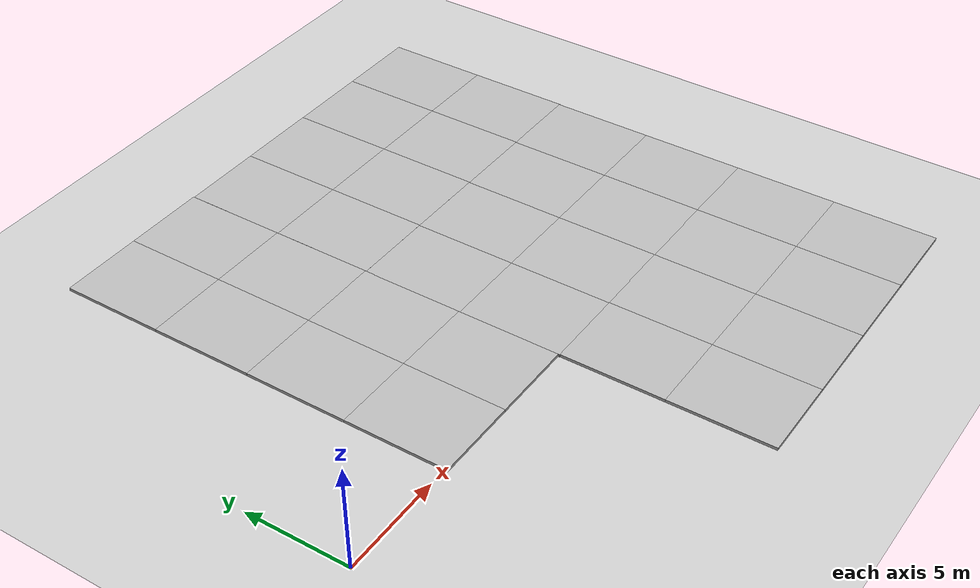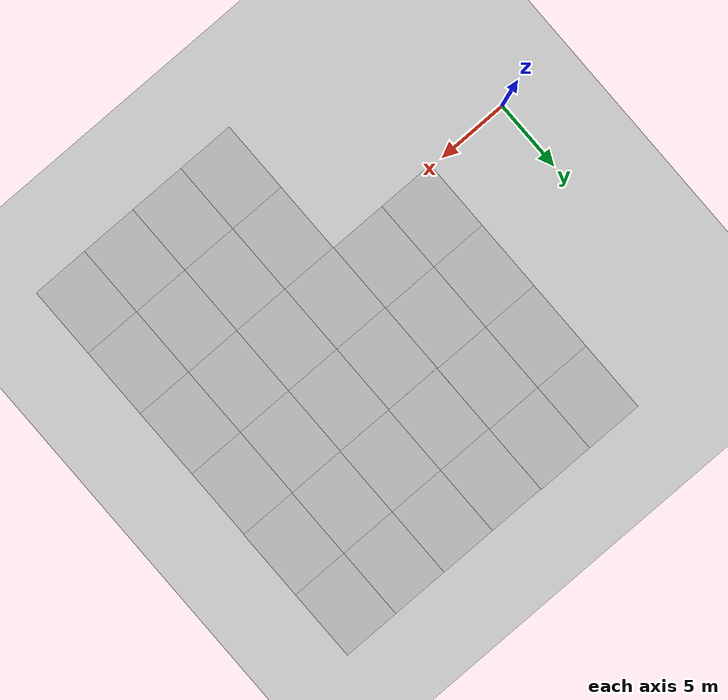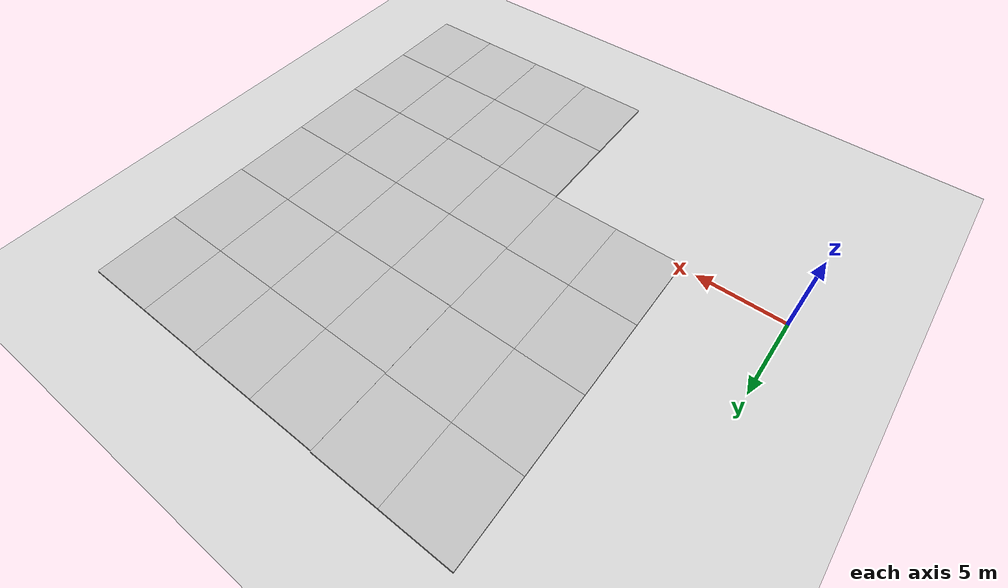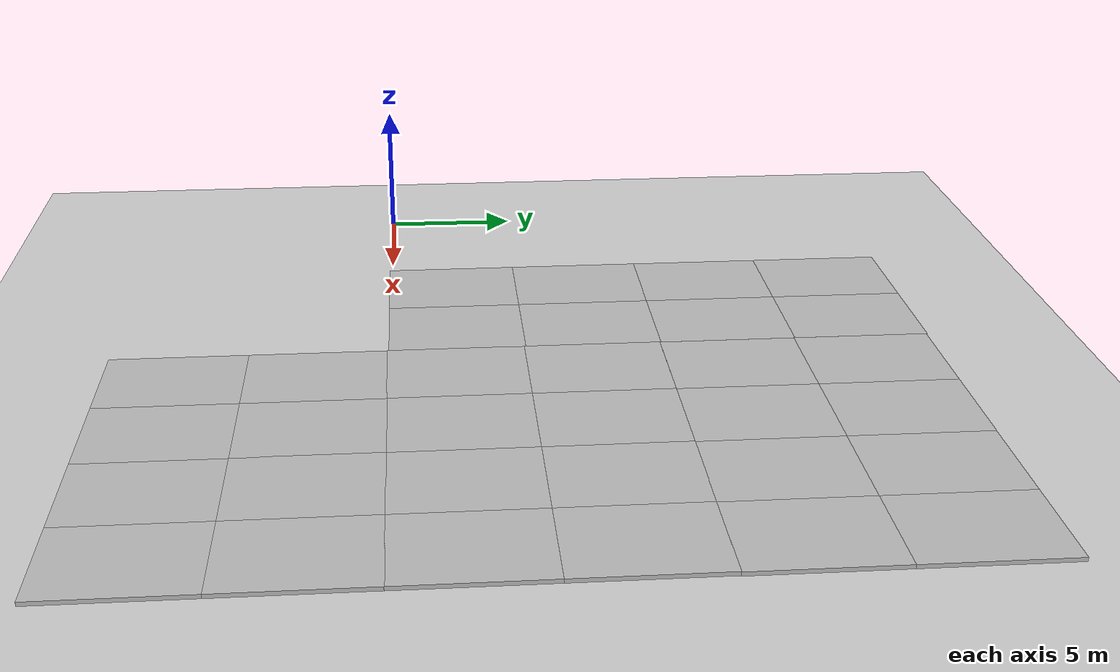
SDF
<sdf version="1.7">
 <world name="default">
  <model name="ground_plane">
   <static>1</static>
   <link name="link">
    <collision name="collision">
     <geometry><plane><normal>0 0 1</normal><size>100 100</size></plane></geometry>
     <surface><friction><ode><mu>100</mu><mu2>50</mu2></ode></friction></surface>
    </collision>
    <visual name="visual">
     <cast_shadows>0</cast_shadows>
     <geometry><plane><normal>0 0 1</normal><size>100 100</size></plane></geometry>
     <material>
      <script><uri>file://media/materials/scripts/gazebo.material</uri><name>Gazebo/Grey</name></script>
     </material>
    </visual>
   </link>
  </model>
  <model name="mud_box">
   <static>1</static>
   <link name="link">
    <collision name="collision"><geometry><box><size>8 10 0.2</size></box></geometry></collision>
    <visual name="visual_1">
     <pose>-2 2.5 0 0 -0 0</pose>
     <cast_shadows>0</cast_shadows>
     <geometry><box><size>4 5 0.2</size></box></geometry>
     <material>
      <script>
       <uri>model://mud_box/materials/scripts</uri>
       <uri>model://mud_box/materials/textures</uri>
       <name>vrc/mud</name>
      </script>
     </material>
    </visual>
    <visual name="visual_2">
     <pose>2 2.5 0 0 -0 0</pose>
     <cast_shadows>0</cast_shadows>
     <geometry><box><size>4 5 0.2</size></box></geometry>
     <material>
      <script>
       <uri>model://mud_box/materials/scripts</uri>
       <uri>model://mud_box/materials/textures</uri>
       <name>vrc/mud</name>
      </script>
     </material>
    </visual>
    <visual name="visual_3">
     <pose>2 -2.5 0 0 -0 0</pose>
     <cast_shadows>0</cast_shadows>
     <geometry><box><size>4 5 0.2</size></box></geometry>
     <material>
      <script>
       <uri>model://mud_box/materials/scripts</uri>
       <uri>model://mud_box/materials/textures</uri>
       <name>vrc/mud</name>
      </script>
     </material>
    </visual>
    <visual name="visual_4">
     <pose>-2 -2.5 0 0 -0 0</pose>
     <cast_shadows>0</cast_shadows>
     <geometry><box><size>4 5 0.2</size></box></geometry>
     <material>
      <script>
       <uri>model://mud_box/materials/scripts</uri>
       <uri>model://mud_box/materials/textures</uri>
       <name>vrc/mud</name>
      </script>
     </material>
    </visual>
   </link>
   <pose>9.86832 14.8407 0 0 -0 0</pose>
  </model>
  <model name="mud_box_1">
   <static>1</static>
   <link name="link">
    <collision name="collision"><geometry><box><size>8 10 0.2</size></box></geometry></collision>
    <visual name="visual_1">
     <pose>-2 2.5 0 0 -0 0</pose>
     <cast_shadows>0</cast_shadows>
     <geometry><box><size>4 5 0.2</size></box></geometry>
     <material>
      <script>
       <uri>model://mud_box/materials/scripts</uri>
       <uri>model://mud_box/materials/textures</uri>
       <name>vrc/mud</name>
      </script>
     </material>
    </visual>
    <visual name="visual_2">
     <pose>2 2.5 0 0 -0 0</pose>
     <cast_shadows>0</cast_shadows>
     <geometry><box><size>4 5 0.2</size></box></geometry>
     <material>
      <script>
       <uri>model://mud_box/materials/scripts</uri>
       <uri>model://mud_box/materials/textures</uri>
       <name>vrc/mud</name>
      </script>
     </material>
    </visual>
    <visual name="visual_3">
     <pose>2 -2.5 0 0 -0 0</pose>
     <cast_shadows>0</cast_shadows>
     <geometry><box><size>4 5 0.2</size></box></geometry>
     <material>
      <script>
       <uri>model://mud_box/materials/scripts</uri>
       <uri>model://mud_box/materials/textures</uri>
       <name>vrc/mud</name>
      </script>
     </material>
    </visual>
    <visual name="visual_4">
     <pose>-2 -2.5 0 0 -0 0</pose>
     <cast_shadows>0</cast_shadows>
     <geometry><box><size>4 5 0.2</size></box></geometry>
     <material>
      <script>
       <uri>model://mud_box/materials/scripts</uri>
       <uri>model://mud_box/materials/textures</uri>
       <name>vrc/mud</name>
      </script>
     </material>
    </visual>
   </link>
   <pose>25.8304 -5.18145 0 0 -0 0</pose>
  </model>
  <model name="mud_box_0_clone_clone">
   <static>1</static>
   <link name="link">
    <collision name="collision"><geometry><box><size>8 10 0.2</size></box></geometry></collision>
    <visual name="visual_1">
     <pose>-2 2.5 0 0 -0 0</pose>
     <cast_shadows>0</cast_shadows>
     <geometry><box><size>4 5 0.2</size></box></geometry>
     <material>
      <script>
       <uri>model://mud_box/materials/scripts</uri>
       <uri>model://mud_box/materials/textures</uri>
       <name>vrc/mud</name>
      </script>
     </material>
    </visual>
    <visual name="visual_2">
     <pose>2 2.5 0 0 -0 0</pose>
     <cast_shadows>0</cast_shadows>
     <geometry><box><size>4 5 0.2</size></box></geometry>
     <material>
      <script>
       <uri>model://mud_box/materials/scripts</uri>
       <uri>model://mud_box/materials/textures</uri>
       <name>vrc/mud</name>
      </script>
     </material>
    </visual>
    <visual name="visual_3">
     <pose>2 -2.5 0 0 -0 0</pose>
     <cast_shadows>0</cast_shadows>
     <geometry><box><size>4 5 0.2</size></box></geometry>
     <material>
      <script>
       <uri>model://mud_box/materials/scripts</uri>
       <uri>model://mud_box/materials/textures</uri>
       <name>vrc/mud</name>
      </script>
     </material>
    </visual>
    <visual name="visual_4">
     <pose>-2 -2.5 0 0 -0 0</pose>
     <cast_shadows>0</cast_shadows>
     <geometry><box><size>4 5 0.2</size></box></geometry>
     <material>
      <script>
       <uri>model://mud_box/materials/scripts</uri>
       <uri>model://mud_box/materials/textures</uri>
       <name>vrc/mud</name>
      </script>
     </material>
    </visual>
   </link>
   <pose>17.8643 -5.17973 0 0 -0 0</pose>
  </model>
  <model name="mud_box_0_clone_clone_0">
   <static>1</static>
   <link name="link">
    <collision name="collision"><geometry><box><size>8 10 0.2</size></box></geometry></collision>
    <visual name="visual_1">
     <pose>-2 2.5 0 0 -0 0</pose>
     <cast_shadows>0</cast_shadows>
     <geometry><box><size>4 5 0.2</size></box></geometry>
     <material>
      <script>
       <uri>model://mud_box/materials/scripts</uri>
       <uri>model://mud_box/materials/textures</uri>
       <name>vrc/mud</name>
      </script>
     </material>
    </visual>
    <visual name="visual_2">
     <pose>2 2.5 0 0 -0 0</pose>
     <cast_shadows>0</cast_shadows>
     <geometry><box><size>4 5 0.2</size></box></geometry>
     <material>
      <script>
       <uri>model://mud_box/materials/scripts</uri>
       <uri>model://mud_box/materials/textures</uri>
       <name>vrc/mud</name>
      </script>
     </material>
    </visual>
    <visual name="visual_3">
     <pose>2 -2.5 0 0 -0 0</pose>
     <cast_shadows>0</cast_shadows>
     <geometry><box><size>4 5 0.2</size></box></geometry>
     <material>
      <script>
       <uri>model://mud_box/materials/scripts</uri>
       <uri>model://mud_box/materials/textures</uri>
       <name>vrc/mud</name>
      </script>
     </material>
    </visual>
    <visual name="visual_4">
     <pose>-2 -2.5 0 0 -0 0</pose>
     <cast_shadows>0</cast_shadows>
     <geometry><box><size>4 5 0.2</size></box></geometry>
     <material>
      <script>
       <uri>model://mud_box/materials/scripts</uri>
       <uri>model://mud_box/materials/textures</uri>
       <name>vrc/mud</name>
      </script>
     </material>
    </visual>
   </link>
   <pose>17.8432 4.79546 0 0 -0 0</pose>
  </model>
  <model name="mud_box_0_clone_clone_1">
   <static>1</static>
   <link name="link">
    <collision name="collision"><geometry><box><size>8 10 0.2</size></box></geometry></collision>
    <visual name="visual_1">
     <pose>-2 2.5 0 0 -0 0</pose>
     <cast_shadows>0</cast_shadows>
     <geometry><box><size>4 5 0.2</size></box></geometry>
     <material>
      <script>
       <uri>model://mud_box/materials/scripts</uri>
       <uri>model://mud_box/materials/textures</uri>
       <name>vrc/mud</name>
      </script>
     </material>
    </visual>
    <visual name="visual_2">
     <pose>2 2.5 0 0 -0 0</pose>
     <cast_shadows>0</cast_shadows>
     <geometry><box><size>4 5 0.2</size></box></geometry>
     <material>
      <script>
       <uri>model://mud_box/materials/scripts</uri>
       <uri>model://mud_box/materials/textures</uri>
       <name>vrc/mud</name>
      </script>
     </material>
    </visual>
    <visual name="visual_3">
     <pose>2 -2.5 0 0 -0 0</pose>
     <cast_shadows>0</cast_shadows>
     <geometry><box><size>4 5 0.2</size></box></geometry>
     <material>
      <script>
       <uri>model://mud_box/materials/scripts</uri>
       <uri>model://mud_box/materials/textures</uri>
       <name>vrc/mud</name>
      </script>
     </material>
    </visual>
    <visual name="visual_4">
     <pose>-2 -2.5 0 0 -0 0</pose>
     <cast_shadows>0</cast_shadows>
     <geometry><box><size>4 5 0.2</size></box></geometry>
     <material>
      <script>
       <uri>model://mud_box/materials/scripts</uri>
       <uri>model://mud_box/materials/textures</uri>
       <name>vrc/mud</name>
      </script>
     </material>
    </visual>
   </link>
   <pose>25.8322 4.79818 0 0 -0 0</pose>
  </model>
  <model name="mud_box_4">
   <static>1</static>
   <link name="link">
    <collision name="collision"><geometry><box><size>8 10 0.2</size></box></geometry></collision>
    <visual name="visual_1">
     <pose>-2 2.5 0 0 -0 0</pose>
     <cast_shadows>0</cast_shadows>
     <geometry><box><size>4 5 0.2</size></box></geometry>
     <material>
      <script>
       <uri>model://mud_box/materials/scripts</uri>
       <uri>model://mud_box/materials/textures</uri>
       <name>vrc/mud</name>
      </script>
     </material>
    </visual>
    <visual name="visual_2">
     <pose>2 2.5 0 0 -0 0</pose>
     <cast_shadows>0</cast_shadows>
     <geometry><box><size>4 5 0.2</size></box></geometry>
     <material>
      <script>
       <uri>model://mud_box/materials/scripts</uri>
       <uri>model://mud_box/materials/textures</uri>
       <name>vrc/mud</name>
      </script>
     </material>
    </visual>
    <visual name="visual_3">
     <pose>2 -2.5 0 0 -0 0</pose>
     <cast_shadows>0</cast_shadows>
     <geometry><box><size>4 5 0.2</size></box></geometry>
     <material>
      <script>
       <uri>model://mud_box/materials/scripts</uri>
       <uri>model://mud_box/materials/textures</uri>
       <name>vrc/mud</name>
      </script>
     </material>
    </visual>
    <visual name="visual_4">
     <pose>-2 -2.5 0 0 -0 0</pose>
     <cast_shadows>0</cast_shadows>
     <geometry><box><size>4 5 0.2</size></box></geometry>
     <material>
      <script>
       <uri>model://mud_box/materials/scripts</uri>
       <uri>model://mud_box/materials/textures</uri>
       <name>vrc/mud</name>
      </script>
     </material>
    </visual>
   </link>
   <pose>9.86465 4.85433 0 0 -0 0</pose>
  </model>
  <model name="mud_box_3">
   <static>1</static>
   <link name="link">
    <collision name="collision"><geometry><box><size>8 10 0.2</size></box></geometry></collision>
    <visual name="visual_1">
     <pose>-2 2.5 0 0 -0 0</pose>
     <cast_shadows>0</cast_shadows>
     <geometry><box><size>4 5 0.2</size></box></geometry>
     <material>
      <script>
       <uri>model://mud_box/materials/scripts</uri>
       <uri>model://mud_box/materials/textures</uri>
       <name>vrc/mud</name>
      </script>
     </material>
    </visual>
    <visual name="visual_2">
     <pose>2 2.5 0 0 -0 0</pose>
     <cast_shadows>0</cast_shadows>
     <geometry><box><size>4 5 0.2</size></box></geometry>
     <material>
      <script>
       <uri>model://mud_box/materials/scripts</uri>
       <uri>model://mud_box/materials/textures</uri>
       <name>vrc/mud</name>
      </script>
     </material>
    </visual>
    <visual name="visual_3">
     <pose>2 -2.5 0 0 -0 0</pose>
     <cast_shadows>0</cast_shadows>
     <geometry><box><size>4 5 0.2</size></box></geometry>
     <material>
      <script>
       <uri>model://mud_box/materials/scripts</uri>
       <uri>model://mud_box/materials/textures</uri>
       <name>vrc/mud</name>
      </script>
     </material>
    </visual>
    <visual name="visual_4">
     <pose>-2 -2.5 0 0 -0 0</pose>
     <cast_shadows>0</cast_shadows>
     <geometry><box><size>4 5 0.2</size></box></geometry>
     <material>
      <script>
       <uri>model://mud_box/materials/scripts</uri>
       <uri>model://mud_box/materials/textures</uri>
       <name>vrc/mud</name>
      </script>
     </material>
    </visual>
   </link>
   <pose>17.8698 14.7961 0 0 -0 0</pose>
  </model>
  <model name="mud_box_5">
   <static>1</static>
   <link name="link">
    <collision name="collision"><geometry><box><size>8 10 0.2</size></box></geometry></collision>
    <visual name="visual_1">
     <pose>-2 2.5 0 0 -0 0</pose>
     <cast_shadows>0</cast_shadows>
     <geometry><box><size>4 5 0.2</size></box></geometry>
     <material>
      <script>
       <uri>model://mud_box/materials/scripts</uri>
       <uri>model://mud_box/materials/textures</uri>
       <name>vrc/mud</name>
      </script>
     </material>
    </visual>
    <visual name="visual_2">
     <pose>2 2.5 0 0 -0 0</pose>
     <cast_shadows>0</cast_shadows>
     <geometry><box><size>4 5 0.2</size></box></geometry>
     <material>
      <script>
       <uri>model://mud_box/materials/scripts</uri>
       <uri>model://mud_box/materials/textures</uri>
       <name>vrc/mud</name>
      </script>
     </material>
    </visual>
    <visual name="visual_3">
     <pose>2 -2.5 0 0 -0 0</pose>
     <cast_shadows>0</cast_shadows>
     <geometry><box><size>4 5 0.2</size></box></geometry>
     <material>
      <script>
       <uri>model://mud_box/materials/scripts</uri>
       <uri>model://mud_box/materials/textures</uri>
       <name>vrc/mud</name>
      </script>
     </material>
    </visual>
    <visual name="visual_4">
     <pose>-2 -2.5 0 0 -0 0</pose>
     <cast_shadows>0</cast_shadows>
     <geometry><box><size>4 5 0.2</size></box></geometry>
     <material>
      <script>
       <uri>model://mud_box/materials/scripts</uri>
       <uri>model://mud_box/materials/textures</uri>
       <name>vrc/mud</name>
      </script>
     </material>
    </visual>
   </link>
   <pose>25.863 14.7854 0 0 -0 0</pose>
  </model>
 </world>
</sdf>
